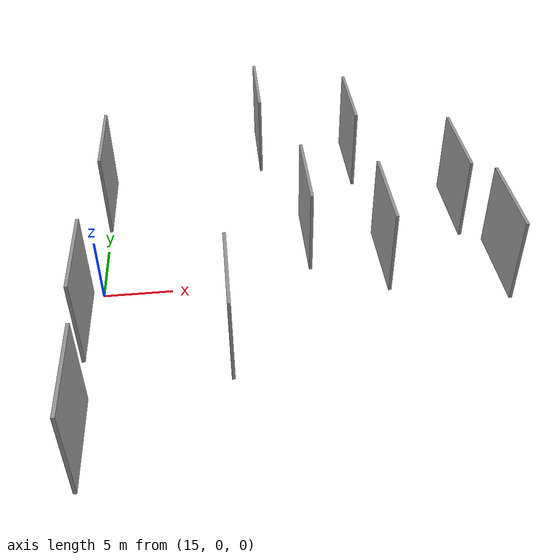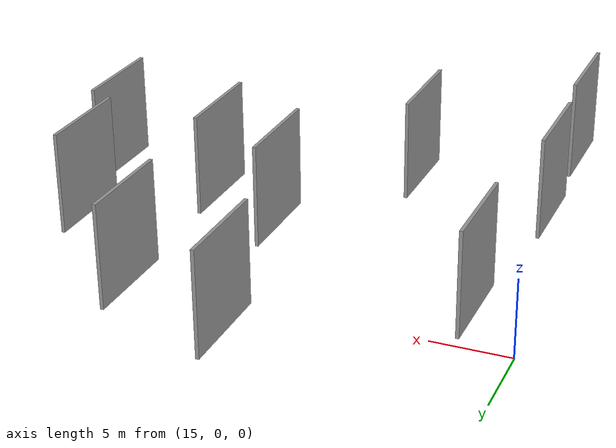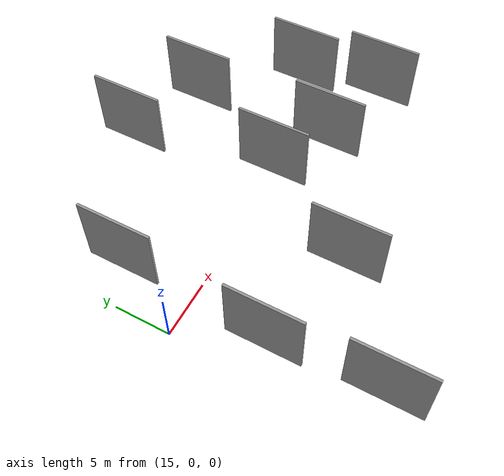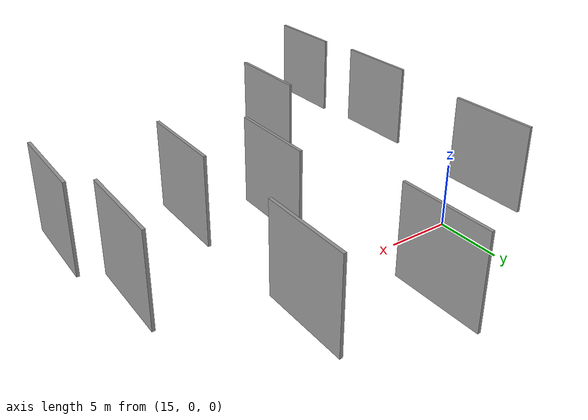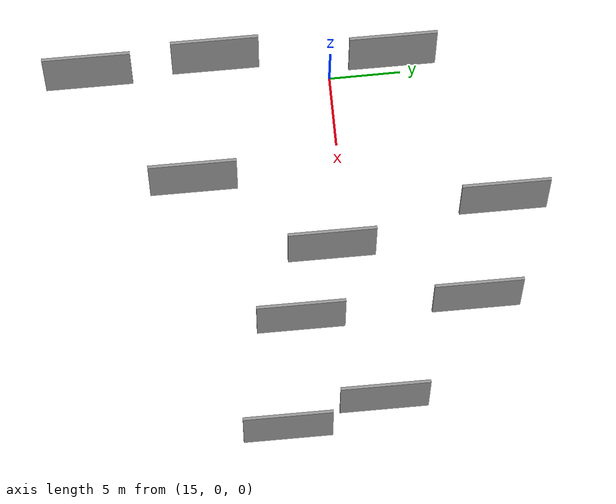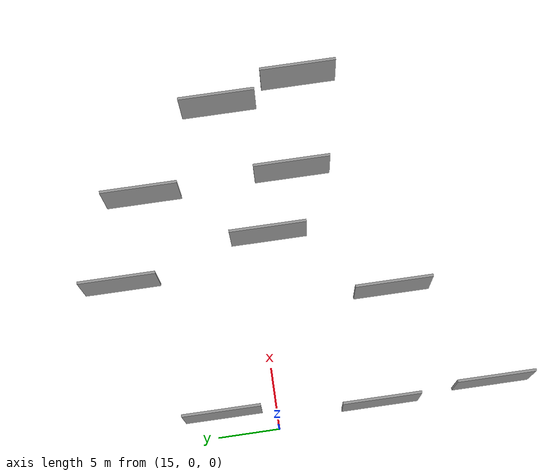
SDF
<sdf version="1.6">
 <world name="default">
  <scene>
   <sky><clouds><speed>12</speed></clouds></sky>
   <ambient>0.4 0.4 0.4 1</ambient>
   <background>0.7 0.7 0.7 1</background>
   <shadows>1</shadows>
  </scene>
  <gravity>0 0 -9.8066</gravity>
  <magnetic_field>6e-06 2.3e-05 -4.2e-05</magnetic_field>
  <physics default="0" name="default_physics" type="ode">
   <ode>
    <solver>
     <type>quick</type>
     <iters>10</iters>
     <sor>1.0</sor>
     <use_dynamic_moi_rescaling>0</use_dynamic_moi_rescaling>
    </solver>
    <constraints>
     <cfm>0</cfm>
     <erp>0.2</erp>
     <contact_max_correcting_vel>100</contact_max_correcting_vel>
     <contact_surface_layer>0.001</contact_surface_layer>
    </constraints>
   </ode>
   <max_step_size>0.004</max_step_size>
   <real_time_factor>1</real_time_factor>
   <real_time_update_rate>250</real_time_update_rate>
  </physics>
  <light name="sun" type="directional">
   <pose>0 0 10 0 0 0</pose>
   <diffuse>0.8 0.8 0.8 1</diffuse>
   <specular>0.2 0.2 0.2 1</specular>
   <attenuation>
    <range>1000</range>
    <constant>0.9</constant>
    <linear>0.01</linear>
    <quadratic>0.001</quadratic>
   </attenuation>
   <direction>-0.5 0.1 -0.9</direction>
  </light>
  <model name="grey_wall_1">
   <static>1</static>
   <pose>15.3654 -7.9960 5.0 0.000000 0.000000 1.570796</pose>
   <link name="link">
    <pose>0 0 3.00 0 0 0</pose>
    <collision name="collision"><geometry><box><size>6.00 0.2 6.00</size></box></geometry></collision>
    <visual name="visual">
     <cast_shadows>0</cast_shadows>
     <geometry><box><size>6.00 0.2 6.00</size></box></geometry>
     <material>
      <script>
       <uri>model://grey_wall/materials/scripts</uri>
       <uri>model://grey_wall/materials/textures</uri>
       <name>vrc/grey_wall</name>
      </script>
     </material>
    </visual>
   </link>
  </model>
  <model name="grey_wall_2">
   <static>1</static>
   <pose>27.2869 10.6996 5.0 0.000000 0.000000 1.570796</pose>
   <link name="link">
    <pose>0 0 3.00 0 0 0</pose>
    <collision name="collision"><geometry><box><size>6.00 0.2 6.00</size></box></geometry></collision>
    <visual name="visual">
     <cast_shadows>0</cast_shadows>
     <geometry><box><size>6.00 0.2 6.00</size></box></geometry>
     <material>
      <script>
       <uri>model://grey_wall/materials/scripts</uri>
       <uri>model://grey_wall/materials/textures</uri>
       <name>vrc/grey_wall</name>
      </script>
     </material>
    </visual>
   </link>
  </model>
  <model name="grey_wall_3">
   <static>1</static>
   <pose>41.9764 -5.3572 5.0 0.000000 0.000000 1.570796</pose>
   <link name="link">
    <pose>0 0 3.00 0 0 0</pose>
    <collision name="collision"><geometry><box><size>6.00 0.2 6.00</size></box></geometry></collision>
    <visual name="visual">
     <cast_shadows>0</cast_shadows>
     <geometry><box><size>6.00 0.2 6.00</size></box></geometry>
     <material>
      <script>
       <uri>model://grey_wall/materials/scripts</uri>
       <uri>model://grey_wall/materials/textures</uri>
       <name>vrc/grey_wall</name>
      </script>
     </material>
    </visual>
   </link>
  </model>
  <model name="grey_wall_4">
   <static>1</static>
   <pose>16.1547 4.1530 5.0 0.000000 0.000000 1.570796</pose>
   <link name="link">
    <pose>0 0 3.00 0 0 0</pose>
    <collision name="collision"><geometry><box><size>6.00 0.2 6.00</size></box></geometry></collision>
    <visual name="visual">
     <cast_shadows>0</cast_shadows>
     <geometry><box><size>6.00 0.2 6.00</size></box></geometry>
     <material>
      <script>
       <uri>model://grey_wall/materials/scripts</uri>
       <uri>model://grey_wall/materials/textures</uri>
       <name>vrc/grey_wall</name>
      </script>
     </material>
    </visual>
   </link>
  </model>
  <model name="grey_wall_5">
   <static>1</static>
   <pose>24.0363 -10.2227 5.0 0.000000 0.000000 1.570796</pose>
   <link name="link">
    <pose>0 0 3.00 0 0 0</pose>
    <collision name="collision"><geometry><box><size>6.00 0.2 6.00</size></box></geometry></collision>
    <visual name="visual">
     <cast_shadows>0</cast_shadows>
     <geometry><box><size>6.00 0.2 6.00</size></box></geometry>
     <material>
      <script>
       <uri>model://grey_wall/materials/scripts</uri>
       <uri>model://grey_wall/materials/textures</uri>
       <name>vrc/grey_wall</name>
      </script>
     </material>
    </visual>
   </link>
  </model>
  <model name="grey_wall_6">
   <static>1</static>
   <pose>40.5136 1.2531 5.0 0.000000 0.000000 1.570796</pose>
   <link name="link">
    <pose>0 0 3.00 0 0 0</pose>
    <collision name="collision"><geometry><box><size>6.00 0.2 6.00</size></box></geometry></collision>
    <visual name="visual">
     <cast_shadows>0</cast_shadows>
     <geometry><box><size>6.00 0.2 6.00</size></box></geometry>
     <material>
      <script>
       <uri>model://grey_wall/materials/scripts</uri>
       <uri>model://grey_wall/materials/textures</uri>
       <name>vrc/grey_wall</name>
      </script>
     </material>
    </visual>
   </link>
  </model>
  <model name="grey_wall_7">
   <static>1</static>
   <pose>34.4610 -3.8066 5.0 0.000000 0.000000 1.570796</pose>
   <link name="link">
    <pose>0 0 3.00 0 0 0</pose>
    <collision name="collision"><geometry><box><size>6.00 0.2 6.00</size></box></geometry></collision>
    <visual name="visual">
     <cast_shadows>0</cast_shadows>
     <geometry><box><size>6.00 0.2 6.00</size></box></geometry>
     <material>
      <script>
       <uri>model://grey_wall/materials/scripts</uri>
       <uri>model://grey_wall/materials/textures</uri>
       <name>vrc/grey_wall</name>
      </script>
     </material>
    </visual>
   </link>
  </model>
  <model name="grey_wall_8">
   <static>1</static>
   <pose>34.0463 8.1525 5.0 0.000000 0.000000 1.570796</pose>
   <link name="link">
    <pose>0 0 3.00 0 0 0</pose>
    <collision name="collision"><geometry><box><size>6.00 0.2 6.00</size></box></geometry></collision>
    <visual name="visual">
     <cast_shadows>0</cast_shadows>
     <geometry><box><size>6.00 0.2 6.00</size></box></geometry>
     <material>
      <script>
       <uri>model://grey_wall/materials/scripts</uri>
       <uri>model://grey_wall/materials/textures</uri>
       <name>vrc/grey_wall</name>
      </script>
     </material>
    </visual>
   </link>
  </model>
  <model name="grey_wall_9">
   <static>1</static>
   <pose>15.7868 -16.7768 5.0 0.000000 0.000000 1.570796</pose>
   <link name="link">
    <pose>0 0 3.00 0 0 0</pose>
    <collision name="collision"><geometry><box><size>6.00 0.2 6.00</size></box></geometry></collision>
    <visual name="visual">
     <cast_shadows>0</cast_shadows>
     <geometry><box><size>6.00 0.2 6.00</size></box></geometry>
     <material>
      <script>
       <uri>model://grey_wall/materials/scripts</uri>
       <uri>model://grey_wall/materials/textures</uri>
       <name>vrc/grey_wall</name>
      </script>
     </material>
    </visual>
   </link>
  </model>
  <model name="grey_wall_10">
   <static>1</static>
   <pose>29.6236 -1.2653 5.0 0.000000 0.000000 1.570796</pose>
   <link name="link">
    <pose>0 0 3.00 0 0 0</pose>
    <collision name="collision"><geometry><box><size>6.00 0.2 6.00</size></box></geometry></collision>
    <visual name="visual">
     <cast_shadows>0</cast_shadows>
     <geometry><box><size>6.00 0.2 6.00</size></box></geometry>
     <material>
      <script>
       <uri>model://grey_wall/materials/scripts</uri>
       <uri>model://grey_wall/materials/textures</uri>
       <name>vrc/grey_wall</name>
      </script>
     </material>
    </visual>
   </link>
  </model>
 </world>
</sdf>
